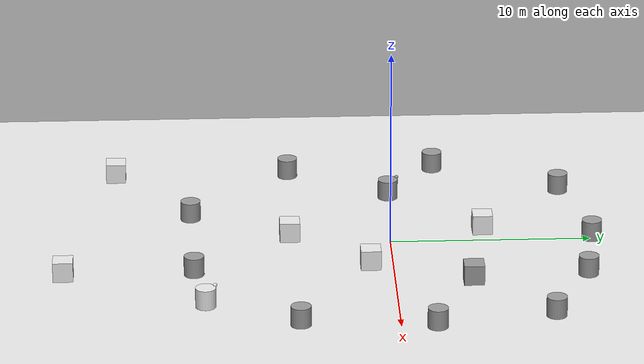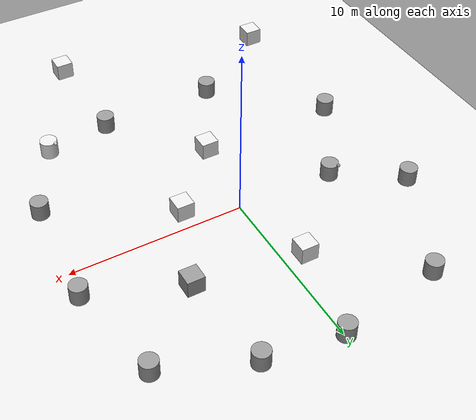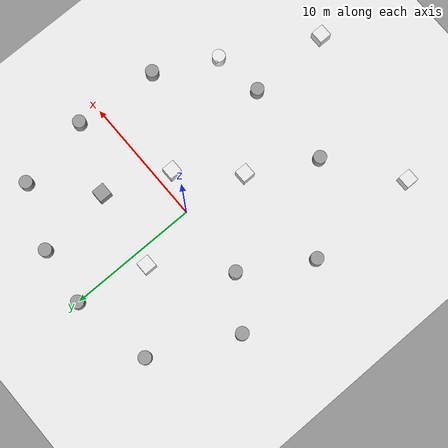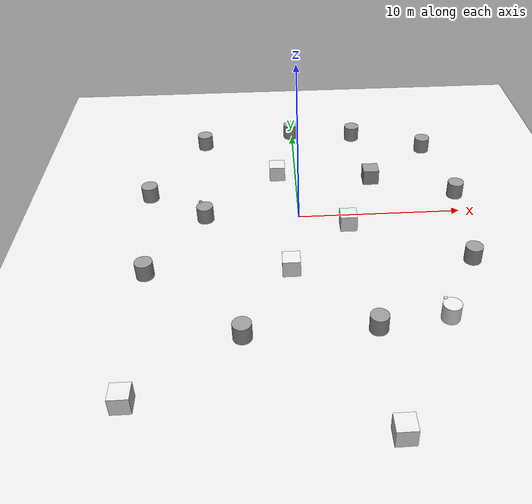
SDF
<sdf version="1.7">
 <world name="default">
  <light name="sun" type="directional">
   <pose>0 0 10 0 -0 0</pose>
   <diffuse>0.8 0.8 0.8 1</diffuse>
   <specular>0.2 0.2 0.2 1</specular>
   <attenuation>
    <range>1000</range>
    <constant>0.9</constant>
    <linear>0.01</linear>
    <quadratic>0.001</quadratic>
   </attenuation>
   <direction>-0.5 0.1 -0.9</direction>
   <spot><inner_angle>0</inner_angle><outer_angle>0</outer_angle><falloff>0</falloff></spot>
  </light>
  <model name="ground_plane">
   <static>1</static>
   <link name="link">
    <collision name="collision">
     <geometry><plane><normal>0 0 1</normal><size>100 100</size></plane></geometry>
     <surface><friction><ode><mu>100</mu><mu2>50</mu2></ode></friction></surface>
    </collision>
    <visual name="visual">
     <cast_shadows>0</cast_shadows>
     <geometry><plane><normal>0 0 1</normal><size>100 100</size></plane></geometry>
     <material>
      <script><uri>file://media/materials/scripts/gazebo.material</uri><name>Gazebo/White</name></script>
     </material>
    </visual>
   </link>
  </model>
  <gravity>0 0 -9.8</gravity>
  <magnetic_field>6e-06 2.3e-05 -4.2e-05</magnetic_field>
  <atmosphere type="adiabatic"/>
  <physics type="ode">
   <max_step_size>0.001</max_step_size>
   <real_time_factor>1</real_time_factor>
   <real_time_update_rate>1000</real_time_update_rate>
  </physics>
  <scene><ambient>0.4 0.4 0.4 1</ambient><background>0.7 0.7 0.7 1</background><shadows>1</shadows></scene>
  <spherical_coordinates>
   <surface_model>EARTH_WGS84</surface_model>
   <latitude_deg>0</latitude_deg>
   <longitude_deg>0</longitude_deg>
   <elevation>0</elevation>
   <heading_deg>0</heading_deg>
  </spherical_coordinates>
  <model name="model2.10">
   <link name="link_12">
    <inertial>
     <mass>1</mass>
     <inertia><ixx>0.145833</ixx><ixy>0</ixy><ixz>0</ixz><iyy>0.145833</iyy><iyz>0</iyz><izz>0.125</izz></inertia>
    </inertial>
    <pose>-3e-06 1e-06 0 0 -0 0</pose>
    <visual name="visual">
     <geometry><cylinder><radius>0.5</radius><length>1</length></cylinder></geometry>
     <material>
      <lighting>1</lighting>
      <script><uri>file://media/materials/scripts/gazebo.material</uri><name>Gazebo/Grey</name></script>
      <shader type="pixel"/>
     </material>
    </visual>
    <collision name="collision">
     <geometry><cylinder><radius>0.5</radius><length>1</length></cylinder></geometry>
     <surface>
      <friction>
       <ode><mu>1</mu><mu2>1</mu2><fdir1>0 0 0</fdir1><slip1>0</slip1><slip2>0</slip2></ode>
       <torsional>
        <coefficient>1</coefficient>
        <patch_radius>0</patch_radius>
        <surface_radius>0</surface_radius>
        <use_patch_radius>1</use_patch_radius>
        <ode><slip>0</slip></ode>
       </torsional>
      </friction>
      <bounce><restitution_coefficient>0</restitution_coefficient><threshold>1e+06</threshold></bounce>
      <contact>
       <collide_without_contact>0</collide_without_contact>
       <collide_without_contact_bitmask>1</collide_without_contact_bitmask>
       <collide_bitmask>1</collide_bitmask>
       <ode>
        <soft_cfm>0</soft_cfm>
        <soft_erp>0.2</soft_erp>
        <kp>1e+13</kp>
        <kd>1</kd>
        <max_vel>0.01</max_vel>
        <min_depth>0</min_depth>
       </ode>
       <bullet>
        <split_impulse>1</split_impulse>
        <split_impulse_penetration_threshold>-0.01</split_impulse_penetration_threshold>
        <soft_cfm>0</soft_cfm>
        <soft_erp>0.2</soft_erp>
        <kp>1e+13</kp>
        <kd>1</kd>
       </bullet>
      </contact>
     </surface>
    </collision>
   </link>
   <static>0</static>
   <pose>-0.069303 10.0831 0.5 0 -0 0</pose>
  </model>
  <model name="model2.1">
   <link name="link_0">
    <inertial>
     <mass>1</mass>
     <inertia><ixx>0.145833</ixx><ixy>0</ixy><ixz>0</ixz><iyy>0.145833</iyy><iyz>0</iyz><izz>0.125</izz></inertia>
    </inertial>
    <visual name="visual">
     <geometry><cylinder><radius>0.5</radius><length>1</length></cylinder></geometry>
     <material>
      <lighting>1</lighting>
      <script><uri>file://media/materials/scripts/gazebo.material</uri><name>Gazebo/Grey</name></script>
      <shader type="pixel"><normal_map>__default__</normal_map></shader>
     </material>
    </visual>
    <collision name="collision">
     <geometry><cylinder><radius>0.5</radius><length>1</length></cylinder></geometry>
     <surface>
      <friction>
       <ode><mu>1</mu><mu2>1</mu2><fdir1>0 0 0</fdir1><slip1>0</slip1><slip2>0</slip2></ode>
       <torsional>
        <coefficient>1</coefficient>
        <patch_radius>0</patch_radius>
        <surface_radius>0</surface_radius>
        <use_patch_radius>1</use_patch_radius>
        <ode><slip>0</slip></ode>
       </torsional>
      </friction>
      <bounce><restitution_coefficient>0</restitution_coefficient><threshold>1e+06</threshold></bounce>
      <contact>
       <collide_without_contact>0</collide_without_contact>
       <collide_without_contact_bitmask>1</collide_without_contact_bitmask>
       <collide_bitmask>1</collide_bitmask>
       <ode>
        <soft_cfm>0</soft_cfm>
        <soft_erp>0.2</soft_erp>
        <kp>1e+13</kp>
        <kd>1</kd>
        <max_vel>0.01</max_vel>
        <min_depth>0</min_depth>
       </ode>
       <bullet>
        <split_impulse>1</split_impulse>
        <split_impulse_penetration_threshold>-0.01</split_impulse_penetration_threshold>
        <soft_cfm>0</soft_cfm>
        <soft_erp>0.2</soft_erp>
        <kp>1e+13</kp>
        <kd>1</kd>
       </bullet>
      </contact>
     </surface>
    </collision>
   </link>
   <static>0</static>
   <pose>-6.15618 8.91818 0.5 0 -0 0</pose>
  </model>
  <model name="model2.2">
   <link name="link_1">
    <inertial>
     <mass>1</mass>
     <inertia><ixx>0.145833</ixx><ixy>0</ixy><ixz>0</ixz><iyy>0.145833</iyy><iyz>0</iyz><izz>0.125</izz></inertia>
    </inertial>
    <pose>0 5e-06 0 0 -0 0</pose>
    <visual name="visual">
     <geometry><cylinder><radius>0.5</radius><length>1</length></cylinder></geometry>
     <material>
      <lighting>1</lighting>
      <script><uri>file://media/materials/scripts/gazebo.material</uri><name>Gazebo/Grey</name></script>
      <shader type="pixel"/>
     </material>
    </visual>
    <collision name="collision">
     <geometry><cylinder><radius>0.5</radius><length>1</length></cylinder></geometry>
     <surface>
      <friction>
       <ode><mu>1</mu><mu2>1</mu2><fdir1>0 0 0</fdir1><slip1>0</slip1><slip2>0</slip2></ode>
       <torsional>
        <coefficient>1</coefficient>
        <patch_radius>0</patch_radius>
        <surface_radius>0</surface_radius>
        <use_patch_radius>1</use_patch_radius>
        <ode><slip>0</slip></ode>
       </torsional>
      </friction>
      <bounce><restitution_coefficient>0</restitution_coefficient><threshold>1e+06</threshold></bounce>
      <contact>
       <collide_without_contact>0</collide_without_contact>
       <collide_without_contact_bitmask>1</collide_without_contact_bitmask>
       <collide_bitmask>1</collide_bitmask>
       <ode>
        <soft_cfm>0</soft_cfm>
        <soft_erp>0.2</soft_erp>
        <kp>1e+13</kp>
        <kd>1</kd>
        <max_vel>0.01</max_vel>
        <min_depth>0</min_depth>
       </ode>
       <bullet>
        <split_impulse>1</split_impulse>
        <split_impulse_penetration_threshold>-0.01</split_impulse_penetration_threshold>
        <soft_cfm>0</soft_cfm>
        <soft_erp>0.2</soft_erp>
        <kp>1e+13</kp>
        <kd>1</kd>
       </bullet>
      </contact>
     </surface>
    </collision>
   </link>
   <static>0</static>
   <pose>-9.29105 2.63659 0.5 0 -0 0</pose>
  </model>
  <model name="model2.4">
   <link name="link_4">
    <inertial>
     <mass>1</mass>
     <inertia><ixx>0.145833</ixx><ixy>0</ixy><ixz>0</ixz><iyy>0.145833</iyy><iyz>0</iyz><izz>0.125</izz></inertia>
    </inertial>
    <pose>-3e-06 0 0 0 -0 0</pose>
    <visual name="visual">
     <geometry><cylinder><radius>0.5</radius><length>1</length></cylinder></geometry>
     <material>
      <lighting>1</lighting>
      <script><uri>file://media/materials/scripts/gazebo.material</uri><name>Gazebo/Grey</name></script>
      <shader type="pixel"/>
     </material>
    </visual>
    <collision name="collision">
     <geometry><cylinder><radius>0.5</radius><length>1</length></cylinder></geometry>
     <surface>
      <friction>
       <ode><mu>1</mu><mu2>1</mu2><fdir1>0 0 0</fdir1><slip1>0</slip1><slip2>0</slip2></ode>
       <torsional>
        <coefficient>1</coefficient>
        <patch_radius>0</patch_radius>
        <surface_radius>0</surface_radius>
        <use_patch_radius>1</use_patch_radius>
        <ode><slip>0</slip></ode>
       </torsional>
      </friction>
      <bounce><restitution_coefficient>0</restitution_coefficient><threshold>1e+06</threshold></bounce>
      <contact>
       <collide_without_contact>0</collide_without_contact>
       <collide_without_contact_bitmask>1</collide_without_contact_bitmask>
       <collide_bitmask>1</collide_bitmask>
       <ode>
        <soft_cfm>0</soft_cfm>
        <soft_erp>0.2</soft_erp>
        <kp>1e+13</kp>
        <kd>1</kd>
        <max_vel>0.01</max_vel>
        <min_depth>0</min_depth>
       </ode>
       <bullet>
        <split_impulse>1</split_impulse>
        <split_impulse_penetration_threshold>-0.01</split_impulse_penetration_threshold>
        <soft_cfm>0</soft_cfm>
        <soft_erp>0.2</soft_erp>
        <kp>1e+13</kp>
        <kd>1</kd>
       </bullet>
      </contact>
     </surface>
    </collision>
   </link>
   <static>0</static>
   <pose>-8.72092 -4.88792 0.5 0 -0 0</pose>
  </model>
  <model name="model2.3">
   <link name="link_11">
    <inertial>
     <mass>1</mass>
     <inertia><ixx>0.145833</ixx><ixy>0</ixy><ixz>0</ixz><iyy>0.145833</iyy><iyz>0</iyz><izz>0.125</izz></inertia>
    </inertial>
    <pose>-3e-06 0 0 0 -0 0</pose>
    <visual name="visual">
     <geometry><cylinder><radius>0.5</radius><length>1</length></cylinder></geometry>
     <material>
      <lighting>1</lighting>
      <script><uri>file://media/materials/scripts/gazebo.material</uri><name>Gazebo/Grey</name></script>
      <shader type="pixel"/>
     </material>
    </visual>
    <collision name="collision">
     <geometry><cylinder><radius>0.5</radius><length>1</length></cylinder></geometry>
     <surface>
      <friction>
       <ode><mu>1</mu><mu2>1</mu2><fdir1>0 0 0</fdir1><slip1>0</slip1><slip2>0</slip2></ode>
       <torsional>
        <coefficient>1</coefficient>
        <patch_radius>0</patch_radius>
        <surface_radius>0</surface_radius>
        <use_patch_radius>1</use_patch_radius>
        <ode><slip>0</slip></ode>
       </torsional>
      </friction>
      <bounce><restitution_coefficient>0</restitution_coefficient><threshold>1e+06</threshold></bounce>
      <contact>
       <collide_without_contact>0</collide_without_contact>
       <collide_without_contact_bitmask>1</collide_without_contact_bitmask>
       <collide_bitmask>1</collide_bitmask>
       <ode>
        <soft_cfm>0</soft_cfm>
        <soft_erp>0.2</soft_erp>
        <kp>1e+13</kp>
        <kd>1</kd>
        <max_vel>0.01</max_vel>
        <min_depth>0</min_depth>
       </ode>
       <bullet>
        <split_impulse>1</split_impulse>
        <split_impulse_penetration_threshold>-0.01</split_impulse_penetration_threshold>
        <soft_cfm>0</soft_cfm>
        <soft_erp>0.2</soft_erp>
        <kp>1e+13</kp>
        <kd>1</kd>
       </bullet>
      </contact>
     </surface>
    </collision>
   </link>
   <static>0</static>
   <pose>-3.30049 -9.94824 0.5 0 -0 0</pose>
  </model>
  <model name="model2.5">
   <link name="link_5">
    <inertial>
     <mass>1</mass>
     <inertia><ixx>0.145833</ixx><ixy>0</ixy><ixz>0</ixz><iyy>0.145833</iyy><iyz>0</iyz><izz>0.125</izz></inertia>
    </inertial>
    <pose>-0 4e-06 0 0 -0 0</pose>
    <visual name="visual">
     <geometry><cylinder><radius>0.5</radius><length>1</length></cylinder></geometry>
     <material>
      <lighting>1</lighting>
      <script><uri>file://media/materials/scripts/gazebo.material</uri><name>Gazebo/Grey</name></script>
      <shader type="pixel"/>
     </material>
    </visual>
    <collision name="collision">
     <geometry><cylinder><radius>0.5</radius><length>1</length></cylinder></geometry>
     <surface>
      <friction>
       <ode><mu>1</mu><mu2>1</mu2><fdir1>0 0 0</fdir1><slip1>0</slip1><slip2>0</slip2></ode>
       <torsional>
        <coefficient>1</coefficient>
        <patch_radius>0</patch_radius>
        <surface_radius>0</surface_radius>
        <use_patch_radius>1</use_patch_radius>
        <ode><slip>0</slip></ode>
       </torsional>
      </friction>
      <bounce><restitution_coefficient>0</restitution_coefficient><threshold>1e+06</threshold></bounce>
      <contact>
       <collide_without_contact>0</collide_without_contact>
       <collide_without_contact_bitmask>1</collide_without_contact_bitmask>
       <collide_bitmask>1</collide_bitmask>
       <ode>
        <soft_cfm>0</soft_cfm>
        <soft_erp>0.2</soft_erp>
        <kp>1e+13</kp>
        <kd>1</kd>
        <max_vel>0.01</max_vel>
        <min_depth>0</min_depth>
       </ode>
       <bullet>
        <split_impulse>1</split_impulse>
        <split_impulse_penetration_threshold>-0.01</split_impulse_penetration_threshold>
        <soft_cfm>0</soft_cfm>
        <soft_erp>0.2</soft_erp>
        <kp>1e+13</kp>
        <kd>1</kd>
       </bullet>
      </contact>
     </surface>
    </collision>
   </link>
   <static>0</static>
   <pose>3.54549 -9.84256 0.5 0 -0 0</pose>
  </model>
  <model name="model2.6">
   <link name="link_6">
    <inertial>
     <mass>1</mass>
     <inertia><ixx>0.145833</ixx><ixy>0</ixy><ixz>0</ixz><iyy>0.145833</iyy><iyz>0</iyz><izz>0.125</izz></inertia>
    </inertial>
    <pose>-4e-06 4e-06 0 0 -0 0</pose>
    <visual name="visual">
     <geometry><cylinder><radius>0.5</radius><length>1</length></cylinder></geometry>
     <material>
      <lighting>1</lighting>
      <script><uri>file://media/materials/scripts/gazebo.material</uri><name>Gazebo/Grey</name></script>
      <shader type="pixel"/>
     </material>
    </visual>
    <collision name="collision">
     <geometry><cylinder><radius>0.5</radius><length>1</length></cylinder></geometry>
     <surface>
      <friction>
       <ode><mu>1</mu><mu2>1</mu2><fdir1>0 0 0</fdir1><slip1>0</slip1><slip2>0</slip2></ode>
       <torsional>
        <coefficient>1</coefficient>
        <patch_radius>0</patch_radius>
        <surface_radius>0</surface_radius>
        <use_patch_radius>1</use_patch_radius>
        <ode><slip>0</slip></ode>
       </torsional>
      </friction>
      <bounce><restitution_coefficient>0</restitution_coefficient><threshold>1e+06</threshold></bounce>
      <contact>
       <collide_without_contact>0</collide_without_contact>
       <collide_without_contact_bitmask>1</collide_without_contact_bitmask>
       <collide_bitmask>1</collide_bitmask>
       <ode>
        <soft_cfm>0</soft_cfm>
        <soft_erp>0.2</soft_erp>
        <kp>1e+13</kp>
        <kd>1</kd>
        <max_vel>0.01</max_vel>
        <min_depth>0</min_depth>
       </ode>
       <bullet>
        <split_impulse>1</split_impulse>
        <split_impulse_penetration_threshold>-0.01</split_impulse_penetration_threshold>
        <soft_cfm>0</soft_cfm>
        <soft_erp>0.2</soft_erp>
        <kp>1e+13</kp>
        <kd>1</kd>
       </bullet>
      </contact>
     </surface>
    </collision>
   </link>
   <static>0</static>
   <pose>9.63794 -4.80031 0.5 0 -0 0</pose>
  </model>
  <model name="model2.7">
   <link name="link_7">
    <inertial>
     <mass>1</mass>
     <inertia><ixx>0.145833</ixx><ixy>0</ixy><ixz>0</ixz><iyy>0.145833</iyy><iyz>0</iyz><izz>0.125</izz></inertia>
    </inertial>
    <pose>4.2e-05 4e-06 0 0 -0 0</pose>
    <visual name="visual">
     <geometry><cylinder><radius>0.5</radius><length>1</length></cylinder></geometry>
     <material>
      <lighting>1</lighting>
      <script><uri>file://media/materials/scripts/gazebo.material</uri><name>Gazebo/Grey</name></script>
      <shader type="pixel"/>
     </material>
    </visual>
    <collision name="collision">
     <geometry><cylinder><radius>0.5</radius><length>1</length></cylinder></geometry>
     <surface>
      <friction>
       <ode><mu>1</mu><mu2>1</mu2><fdir1>0 0 0</fdir1><slip1>0</slip1><slip2>0</slip2></ode>
       <torsional>
        <coefficient>1</coefficient>
        <patch_radius>0</patch_radius>
        <surface_radius>0</surface_radius>
        <use_patch_radius>1</use_patch_radius>
        <ode><slip>0</slip></ode>
       </torsional>
      </friction>
      <bounce><restitution_coefficient>0</restitution_coefficient><threshold>1e+06</threshold></bounce>
      <contact>
       <collide_without_contact>0</collide_without_contact>
       <collide_without_contact_bitmask>1</collide_without_contact_bitmask>
       <collide_bitmask>1</collide_bitmask>
       <ode>
        <soft_cfm>0</soft_cfm>
        <soft_erp>0.2</soft_erp>
        <kp>1e+13</kp>
        <kd>1</kd>
        <max_vel>0.01</max_vel>
        <min_depth>0</min_depth>
       </ode>
       <bullet>
        <split_impulse>1</split_impulse>
        <split_impulse_penetration_threshold>-0.01</split_impulse_penetration_threshold>
        <soft_cfm>0</soft_cfm>
        <soft_erp>0.2</soft_erp>
        <kp>1e+13</kp>
        <kd>1</kd>
       </bullet>
      </contact>
     </surface>
    </collision>
   </link>
   <static>0</static>
   <pose>10.1207 1.72648 0.5 0 -0 0</pose>
  </model>
  <model name="model2.8">
   <link name="link_8">
    <inertial>
     <mass>1</mass>
     <inertia><ixx>0.145833</ixx><ixy>0</ixy><ixz>0</ixz><iyy>0.145833</iyy><iyz>0</iyz><izz>0.125</izz></inertia>
    </inertial>
    <pose>0 4e-06 0 0 -0 0</pose>
    <visual name="visual">
     <geometry><cylinder><radius>0.5</radius><length>1</length></cylinder></geometry>
     <material>
      <lighting>1</lighting>
      <script><uri>file://media/materials/scripts/gazebo.material</uri><name>Gazebo/Grey</name></script>
      <shader type="pixel"/>
     </material>
    </visual>
    <collision name="collision">
     <geometry><cylinder><radius>0.5</radius><length>1</length></cylinder></geometry>
     <surface>
      <friction>
       <ode><mu>1</mu><mu2>1</mu2><fdir1>0 0 0</fdir1><slip1>0</slip1><slip2>0</slip2></ode>
       <torsional>
        <coefficient>1</coefficient>
        <patch_radius>0</patch_radius>
        <surface_radius>0</surface_radius>
        <use_patch_radius>1</use_patch_radius>
        <ode><slip>0</slip></ode>
       </torsional>
      </friction>
      <bounce><restitution_coefficient>0</restitution_coefficient><threshold>1e+06</threshold></bounce>
      <contact>
       <collide_without_contact>0</collide_without_contact>
       <collide_without_contact_bitmask>1</collide_without_contact_bitmask>
       <collide_bitmask>1</collide_bitmask>
       <ode>
        <soft_cfm>0</soft_cfm>
        <soft_erp>0.2</soft_erp>
        <kp>1e+13</kp>
        <kd>1</kd>
        <max_vel>0.01</max_vel>
        <min_depth>0</min_depth>
       </ode>
       <bullet>
        <split_impulse>1</split_impulse>
        <split_impulse_penetration_threshold>-0.01</split_impulse_penetration_threshold>
        <soft_cfm>0</soft_cfm>
        <soft_erp>0.2</soft_erp>
        <kp>1e+13</kp>
        <kd>1</kd>
       </bullet>
      </contact>
     </surface>
    </collision>
   </link>
   <static>0</static>
   <pose>9.07668 7.50461 0.5 0 -0 0</pose>
  </model>
  <model name="model2.9">
   <link name="link_9">
    <inertial>
     <mass>1</mass>
     <inertia><ixx>0.145833</ixx><ixy>0</ixy><ixz>0</ixz><iyy>0.145833</iyy><iyz>0</iyz><izz>0.125</izz></inertia>
    </inertial>
    <pose>3e-06 1e-06 0 0 -0 0</pose>
    <visual name="visual">
     <geometry><cylinder><radius>0.5</radius><length>1</length></cylinder></geometry>
     <material>
      <lighting>1</lighting>
      <script><uri>file://media/materials/scripts/gazebo.material</uri><name>Gazebo/Grey</name></script>
      <shader type="pixel"/>
     </material>
    </visual>
    <collision name="collision">
     <geometry><cylinder><radius>0.5</radius><length>1</length></cylinder></geometry>
     <surface>
      <friction>
       <ode><mu>1</mu><mu2>1</mu2><fdir1>0 0 0</fdir1><slip1>0</slip1><slip2>0</slip2></ode>
       <torsional>
        <coefficient>1</coefficient>
        <patch_radius>0</patch_radius>
        <surface_radius>0</surface_radius>
        <use_patch_radius>1</use_patch_radius>
        <ode><slip>0</slip></ode>
       </torsional>
      </friction>
      <bounce><restitution_coefficient>0</restitution_coefficient><threshold>1e+06</threshold></bounce>
      <contact>
       <collide_without_contact>0</collide_without_contact>
       <collide_without_contact_bitmask>1</collide_without_contact_bitmask>
       <collide_bitmask>1</collide_bitmask>
       <ode>
        <soft_cfm>0</soft_cfm>
        <soft_erp>0.2</soft_erp>
        <kp>1e+13</kp>
        <kd>1</kd>
        <max_vel>0.01</max_vel>
        <min_depth>0</min_depth>
       </ode>
       <bullet>
        <split_impulse>1</split_impulse>
        <split_impulse_penetration_threshold>-0.01</split_impulse_penetration_threshold>
        <soft_cfm>0</soft_cfm>
        <soft_erp>0.2</soft_erp>
        <kp>1e+13</kp>
        <kd>1</kd>
       </bullet>
      </contact>
     </surface>
    </collision>
   </link>
   <static>0</static>
   <pose>4.3121 9.50766 0.5 0 -0 0</pose>
  </model>
  <model name="model5.1">
   <link name="link_1">
    <inertial>
     <mass>1</mass>
     <inertia><ixx>0.145833</ixx><ixy>0</ixy><ixz>0</ixz><iyy>0.145833</iyy><iyz>0</iyz><izz>0.125</izz></inertia>
    </inertial>
    <pose>0.135672 -0.23052 0 0 -0 0</pose>
    <visual name="visual">
     <geometry><cylinder><radius>0.5</radius><length>1</length></cylinder></geometry>
     <material>
      <lighting>1</lighting>
      <script><uri>file://media/materials/scripts/gazebo.material</uri><name>Gazebo/Grey</name></script>
      <shader type="pixel"/>
      <emissive>0 0 0 1</emissive>
     </material>
    </visual>
    <collision name="collision">
     <geometry><cylinder><radius>0.5</radius><length>1</length></cylinder></geometry>
     <surface>
      <friction>
       <ode><mu>1</mu><mu2>1</mu2><fdir1>0 0 0</fdir1><slip1>0</slip1><slip2>0</slip2></ode>
       <torsional>
        <coefficient>1</coefficient>
        <patch_radius>0</patch_radius>
        <surface_radius>0</surface_radius>
        <use_patch_radius>1</use_patch_radius>
        <ode><slip>0</slip></ode>
       </torsional>
      </friction>
      <bounce><restitution_coefficient>0</restitution_coefficient><threshold>1e+06</threshold></bounce>
      <contact>
       <collide_without_contact>0</collide_without_contact>
       <collide_without_contact_bitmask>1</collide_without_contact_bitmask>
       <collide_bitmask>1</collide_bitmask>
       <ode>
        <soft_cfm>0</soft_cfm>
        <soft_erp>0.2</soft_erp>
        <kp>1e+13</kp>
        <kd>1</kd>
        <max_vel>0.01</max_vel>
        <min_depth>0</min_depth>
       </ode>
       <bullet>
        <split_impulse>1</split_impulse>
        <split_impulse_penetration_threshold>-0.01</split_impulse_penetration_threshold>
        <soft_cfm>0</soft_cfm>
        <soft_erp>0.2</soft_erp>
        <kp>1e+13</kp>
        <kd>1</kd>
       </bullet>
      </contact>
     </surface>
    </collision>
   </link>
   <link name="link_2">
    <inertial>
     <mass>1</mass>
     <inertia><ixx>0.1</ixx><ixy>0</ixy><ixz>0</ixz><iyy>0.1</iyy><iyz>0</iyz><izz>0.1</izz></inertia>
    </inertial>
    <pose>-0.13567 0.230521 0.5 0 -0 0</pose>
    <visual name="visual">
     <geometry><sphere><radius>0.1</radius></sphere></geometry>
     <material>
      <lighting>1</lighting>
      <script><uri>file://media/materials/scripts/gazebo.material</uri><name>Gazebo/Grey</name></script>
      <shader type="pixel"><normal_map>__default__</normal_map></shader>
      <ambient>0.3 0.3 0.3 1</ambient>
      <diffuse>0.7 0.7 0.7 1</diffuse>
      <specular>0.01 0.01 0.01 1</specular>
      <emissive>0 0 0 1</emissive>
     </material>
    </visual>
    <collision name="collision">
     <geometry><sphere><radius>0.1</radius></sphere></geometry>
     <surface>
      <friction>
       <ode><mu>1</mu><mu2>1</mu2><fdir1>0 0 0</fdir1><slip1>0</slip1><slip2>0</slip2></ode>
       <torsional>
        <coefficient>1</coefficient>
        <patch_radius>0</patch_radius>
        <surface_radius>0</surface_radius>
        <use_patch_radius>1</use_patch_radius>
        <ode><slip>0</slip></ode>
       </torsional>
      </friction>
      <bounce><restitution_coefficient>0</restitution_coefficient><threshold>1e+06</threshold></bounce>
      <contact>
       <collide_without_contact>0</collide_without_contact>
       <collide_without_contact_bitmask>1</collide_without_contact_bitmask>
       <collide_bitmask>1</collide_bitmask>
       <ode>
        <soft_cfm>0</soft_cfm>
        <soft_erp>0.2</soft_erp>
        <kp>1e+13</kp>
        <kd>1</kd>
        <max_vel>0.01</max_vel>
        <min_depth>0</min_depth>
       </ode>
       <bullet>
        <split_impulse>1</split_impulse>
        <split_impulse_penetration_threshold>-0.01</split_impulse_penetration_threshold>
        <soft_cfm>0</soft_cfm>
        <soft_erp>0.2</soft_erp>
        <kp>1e+13</kp>
        <kd>1</kd>
       </bullet>
      </contact>
     </surface>
    </collision>
   </link>
   <joint name="link_1_JOINT_0" type="revolute">
    <parent>link_1</parent>
    <child>link_2</child>
    <pose>0 0 0 0 0 -0.03</pose>
    <axis>
     <xyz>0 0 2</xyz>
     <limit>
      <lower>-1.79769e+308</lower>
      <upper>1.79769e+308</upper>
      <effort>-1</effort>
      <velocity>-1</velocity>
     </limit>
     <dynamics>
      <spring_reference>0</spring_reference>
      <spring_stiffness>0</spring_stiffness>
      <damping>0</damping>
     </dynamics>
    </axis>
    <physics>
     <ode><limit><cfm>0</cfm><erp>0.2</erp></limit><suspension><cfm>0</cfm><erp>0.2</erp></suspension></ode>
    </physics>
   </joint>
   <static>0</static>
   <pose>-5.82027 0.390792 0.499993 0 -0 -0.001529</pose>
  </model>
  <model name="Untitled1.1">
   <link name="link_0">
    <inertial>
     <mass>1</mass>
     <inertia>
      <ixx>0.166667</ixx>
      <ixy>0</ixy>
      <ixz>0</ixz>
      <iyy>0.166667</iyy>
      <iyz>0</iyz>
      <izz>0.166667</izz>
     </inertia>
    </inertial>
    <pose>1e-06 -1e-06 0 0 -0 0</pose>
    <visual name="visual">
     <geometry><box><size>1 1 1</size></box></geometry>
     <material>
      <lighting>1</lighting>
      <script><uri>file://media/materials/scripts/gazebo.material</uri><name>Gazebo/White</name></script>
      <shader type="pixel"/>
     </material>
    </visual>
    <collision name="collision">
     <geometry><box><size>1 1 1</size></box></geometry>
     <surface>
      <friction>
       <ode><mu>1</mu><mu2>1</mu2><fdir1>0 0 0</fdir1><slip1>0</slip1><slip2>0</slip2></ode>
       <torsional>
        <coefficient>1</coefficient>
        <patch_radius>0</patch_radius>
        <surface_radius>0</surface_radius>
        <use_patch_radius>1</use_patch_radius>
        <ode><slip>0</slip></ode>
       </torsional>
      </friction>
      <bounce><restitution_coefficient>0</restitution_coefficient><threshold>1e+06</threshold></bounce>
      <contact>
       <collide_without_contact>0</collide_without_contact>
       <collide_without_contact_bitmask>1</collide_without_contact_bitmask>
       <collide_bitmask>1</collide_bitmask>
       <ode>
        <soft_cfm>0</soft_cfm>
        <soft_erp>0.2</soft_erp>
        <kp>1e+13</kp>
        <kd>1</kd>
        <max_vel>0.01</max_vel>
        <min_depth>0</min_depth>
       </ode>
       <bullet>
        <split_impulse>1</split_impulse>
        <split_impulse_penetration_threshold>-0.01</split_impulse_penetration_threshold>
        <soft_cfm>0</soft_cfm>
        <soft_erp>0.2</soft_erp>
        <kp>1e+13</kp>
        <kd>1</kd>
       </bullet>
      </contact>
     </surface>
    </collision>
   </link>
   <static>0</static>
   <pose>-0.657097 -5.02189 0.5 0 -0 0</pose>
  </model>
  <model name="Untitled1.1_0">
   <link name="link_0">
    <inertial>
     <mass>1</mass>
     <inertia>
      <ixx>0.166667</ixx>
      <ixy>0</ixy>
      <ixz>0</ixz>
      <iyy>0.166667</iyy>
      <iyz>0</iyz>
      <izz>0.166667</izz>
     </inertia>
    </inertial>
    <pose>1e-06 -1e-06 0 0 -0 0</pose>
    <visual name="visual">
     <geometry><box><size>1 1 1</size></box></geometry>
     <material>
      <lighting>1</lighting>
      <script><uri>file://media/materials/scripts/gazebo.material</uri><name>Gazebo/Grey</name></script>
      <shader type="pixel"/>
     </material>
    </visual>
    <collision name="collision">
     <geometry><box><size>1 1 1</size></box></geometry>
     <surface>
      <friction>
       <ode><mu>1</mu><mu2>1</mu2><fdir1>0 0 0</fdir1><slip1>0</slip1><slip2>0</slip2></ode>
       <torsional>
        <coefficient>1</coefficient>
        <patch_radius>0</patch_radius>
        <surface_radius>0</surface_radius>
        <use_patch_radius>1</use_patch_radius>
        <ode><slip>0</slip></ode>
       </torsional>
      </friction>
      <bounce><restitution_coefficient>0</restitution_coefficient><threshold>1e+06</threshold></bounce>
      <contact>
       <collide_without_contact>0</collide_without_contact>
       <collide_without_contact_bitmask>1</collide_without_contact_bitmask>
       <collide_bitmask>1</collide_bitmask>
       <ode>
        <soft_cfm>0</soft_cfm>
        <soft_erp>0.2</soft_erp>
        <kp>1e+13</kp>
        <kd>1</kd>
        <max_vel>0.01</max_vel>
        <min_depth>0</min_depth>
       </ode>
       <bullet>
        <split_impulse>1</split_impulse>
        <split_impulse_penetration_threshold>-0.01</split_impulse_penetration_threshold>
        <soft_cfm>0</soft_cfm>
        <soft_erp>0.2</soft_erp>
        <kp>1e+13</kp>
        <kd>1</kd>
       </bullet>
      </contact>
     </surface>
    </collision>
   </link>
   <static>0</static>
   <pose>4.92479 3.81369 0.5 0 -0 0</pose>
  </model>
  <model name="Untitled1.1_1">
   <link name="link_0">
    <inertial>
     <mass>1</mass>
     <inertia>
      <ixx>0.166667</ixx>
      <ixy>0</ixy>
      <ixz>0</ixz>
      <iyy>0.166667</iyy>
      <iyz>0</iyz>
      <izz>0.166667</izz>
     </inertia>
    </inertial>
    <pose>1e-06 -1e-06 0 0 -0 0</pose>
    <visual name="visual">
     <geometry><box><size>1 1 1</size></box></geometry>
     <material>
      <lighting>1</lighting>
      <script><uri>file://media/materials/scripts/gazebo.material</uri><name>Gazebo/White</name></script>
      <shader type="pixel"/>
     </material>
    </visual>
    <collision name="collision">
     <geometry><box><size>1 1 1</size></box></geometry>
     <surface>
      <friction>
       <ode><mu>1</mu><mu2>1</mu2><fdir1>0 0 0</fdir1><slip1>0</slip1><slip2>0</slip2></ode>
       <torsional>
        <coefficient>1</coefficient>
        <patch_radius>0</patch_radius>
        <surface_radius>0</surface_radius>
        <use_patch_radius>1</use_patch_radius>
        <ode><slip>0</slip></ode>
       </torsional>
      </friction>
      <bounce><restitution_coefficient>0</restitution_coefficient><threshold>1e+06</threshold></bounce>
      <contact>
       <collide_without_contact>0</collide_without_contact>
       <collide_without_contact_bitmask>1</collide_without_contact_bitmask>
       <collide_bitmask>1</collide_bitmask>
       <ode>
        <soft_cfm>0</soft_cfm>
        <soft_erp>0.2</soft_erp>
        <kp>1e+13</kp>
        <kd>1</kd>
        <max_vel>0.01</max_vel>
        <min_depth>0</min_depth>
       </ode>
       <bullet>
        <split_impulse>1</split_impulse>
        <split_impulse_penetration_threshold>-0.01</split_impulse_penetration_threshold>
        <soft_cfm>0</soft_cfm>
        <soft_erp>0.2</soft_erp>
        <kp>1e+13</kp>
        <kd>1</kd>
       </bullet>
      </contact>
     </surface>
    </collision>
   </link>
   <static>0</static>
   <pose>2.93444 -1.1378 0.5 0 -0 0</pose>
  </model>
  <model name="Untitled1.1_2">
   <link name="link_0">
    <inertial>
     <mass>1</mass>
     <inertia>
      <ixx>0.166667</ixx>
      <ixy>0</ixy>
      <ixz>0</ixz>
      <iyy>0.166667</iyy>
      <iyz>0</iyz>
      <izz>0.166667</izz>
     </inertia>
    </inertial>
    <pose>1e-06 -1e-06 0 0 -0 0</pose>
    <visual name="visual">
     <geometry><box><size>1 1 1</size></box></geometry>
     <material>
      <lighting>1</lighting>
      <script><uri>file://media/materials/scripts/gazebo.material</uri><name>Gazebo/White</name></script>
      <shader type="pixel"/>
     </material>
    </visual>
    <collision name="collision">
     <geometry><box><size>1 1 1</size></box></geometry>
     <surface>
      <friction>
       <ode><mu>1</mu><mu2>1</mu2><fdir1>0 0 0</fdir1><slip1>0</slip1><slip2>0</slip2></ode>
       <torsional>
        <coefficient>1</coefficient>
        <patch_radius>0</patch_radius>
        <surface_radius>0</surface_radius>
        <use_patch_radius>1</use_patch_radius>
        <ode><slip>0</slip></ode>
       </torsional>
      </friction>
      <bounce><restitution_coefficient>0</restitution_coefficient><threshold>1e+06</threshold></bounce>
      <contact>
       <collide_without_contact>0</collide_without_contact>
       <collide_without_contact_bitmask>1</collide_without_contact_bitmask>
       <collide_bitmask>1</collide_bitmask>
       <ode>
        <soft_cfm>0</soft_cfm>
        <soft_erp>0.2</soft_erp>
        <kp>1e+13</kp>
        <kd>1</kd>
        <max_vel>0.01</max_vel>
        <min_depth>0</min_depth>
       </ode>
       <bullet>
        <split_impulse>1</split_impulse>
        <split_impulse_penetration_threshold>-0.01</split_impulse_penetration_threshold>
        <soft_cfm>0</soft_cfm>
        <soft_erp>0.2</soft_erp>
        <kp>1e+13</kp>
        <kd>1</kd>
       </bullet>
      </contact>
     </surface>
    </collision>
   </link>
   <static>0</static>
   <pose>-1.19172 4.66669 0.5 0 -0 0</pose>
  </model>
  <model name="model5.1_0">
   <link name="link_1">
    <inertial>
     <mass>1</mass>
     <inertia><ixx>0.145833</ixx><ixy>0</ixy><ixz>0</ixz><iyy>0.145833</iyy><iyz>0</iyz><izz>0.125</izz></inertia>
    </inertial>
    <pose>0.135672 -0.23052 0 0 -0 0</pose>
    <visual name="visual">
     <geometry><cylinder><radius>0.5</radius><length>1</length></cylinder></geometry>
     <material>
      <lighting>1</lighting>
      <script><uri>file://media/materials/scripts/gazebo.material</uri><name>Gazebo/White</name></script>
      <shader type="pixel"/>
      <emissive>0 0 0 1</emissive>
     </material>
    </visual>
    <collision name="collision">
     <geometry><cylinder><radius>0.5</radius><length>1</length></cylinder></geometry>
     <surface>
      <friction>
       <ode><mu>1</mu><mu2>1</mu2><fdir1>0 0 0</fdir1><slip1>0</slip1><slip2>0</slip2></ode>
       <torsional>
        <coefficient>1</coefficient>
        <patch_radius>0</patch_radius>
        <surface_radius>0</surface_radius>
        <use_patch_radius>1</use_patch_radius>
        <ode><slip>0</slip></ode>
       </torsional>
      </friction>
      <bounce><restitution_coefficient>0</restitution_coefficient><threshold>1e+06</threshold></bounce>
      <contact>
       <collide_without_contact>0</collide_without_contact>
       <collide_without_contact_bitmask>1</collide_without_contact_bitmask>
       <collide_bitmask>1</collide_bitmask>
       <ode>
        <soft_cfm>0</soft_cfm>
        <soft_erp>0.2</soft_erp>
        <kp>1e+13</kp>
        <kd>1</kd>
        <max_vel>0.01</max_vel>
        <min_depth>0</min_depth>
       </ode>
       <bullet>
        <split_impulse>1</split_impulse>
        <split_impulse_penetration_threshold>-0.01</split_impulse_penetration_threshold>
        <soft_cfm>0</soft_cfm>
        <soft_erp>0.2</soft_erp>
        <kp>1e+13</kp>
        <kd>1</kd>
       </bullet>
      </contact>
     </surface>
    </collision>
   </link>
   <link name="link_2">
    <inertial>
     <mass>1</mass>
     <inertia><ixx>0.1</ixx><ixy>0</ixy><ixz>0</ixz><iyy>0.1</iyy><iyz>0</iyz><izz>0.1</izz></inertia>
    </inertial>
    <pose>-0.13567 0.230521 0.5 0 -0 0</pose>
    <visual name="visual">
     <geometry><sphere><radius>0.1</radius></sphere></geometry>
     <material>
      <lighting>1</lighting>
      <script><uri>file://media/materials/scripts/gazebo.material</uri><name>Gazebo/White</name></script>
      <shader type="pixel"><normal_map>__default__</normal_map></shader>
      <ambient>0.3 0.3 0.3 1</ambient>
      <diffuse>0.7 0.7 0.7 1</diffuse>
      <specular>0.01 0.01 0.01 1</specular>
      <emissive>0 0 0 1</emissive>
     </material>
    </visual>
    <collision name="collision">
     <geometry><sphere><radius>0.1</radius></sphere></geometry>
     <surface>
      <friction>
       <ode><mu>1</mu><mu2>1</mu2><fdir1>0 0 0</fdir1><slip1>0</slip1><slip2>0</slip2></ode>
       <torsional>
        <coefficient>1</coefficient>
        <patch_radius>0</patch_radius>
        <surface_radius>0</surface_radius>
        <use_patch_radius>1</use_patch_radius>
        <ode><slip>0</slip></ode>
       </torsional>
      </friction>
      <bounce><restitution_coefficient>0</restitution_coefficient><threshold>1e+06</threshold></bounce>
      <contact>
       <collide_without_contact>0</collide_without_contact>
       <collide_without_contact_bitmask>1</collide_without_contact_bitmask>
       <collide_bitmask>1</collide_bitmask>
       <ode>
        <soft_cfm>0</soft_cfm>
        <soft_erp>0.2</soft_erp>
        <kp>1e+13</kp>
        <kd>1</kd>
        <max_vel>0.01</max_vel>
        <min_depth>0</min_depth>
       </ode>
       <bullet>
        <split_impulse>1</split_impulse>
        <split_impulse_penetration_threshold>-0.01</split_impulse_penetration_threshold>
        <soft_cfm>0</soft_cfm>
        <soft_erp>0.2</soft_erp>
        <kp>1e+13</kp>
        <kd>1</kd>
       </bullet>
      </contact>
     </surface>
    </collision>
   </link>
   <joint name="link_1_JOINT_0" type="revolute">
    <parent>link_1</parent>
    <child>link_2</child>
    <pose>0 0 0 0 0 -0.03</pose>
    <axis>
     <xyz>0 0 2</xyz>
     <limit>
      <lower>-1.79769e+308</lower>
      <upper>1.79769e+308</upper>
      <effort>-1</effort>
      <velocity>-1</velocity>
     </limit>
     <dynamics>
      <spring_reference>0</spring_reference>
      <spring_stiffness>0</spring_stiffness>
      <damping>0</damping>
     </dynamics>
    </axis>
    <physics>
     <ode><limit><cfm>0</cfm><erp>0.2</erp></limit><suspension><cfm>0</cfm><erp>0.2</erp></suspension></ode>
    </physics>
   </joint>
   <static>0</static>
   <pose>7.19573 -9.09054 0.499991 0 -0 -0.001184</pose>
  </model>
  <model name="Untitled1.1_3">
   <link name="link_0">
    <inertial>
     <mass>1</mass>
     <inertia>
      <ixx>0.166667</ixx>
      <ixy>0</ixy>
      <ixz>0</ixz>
      <iyy>0.166667</iyy>
      <iyz>0</iyz>
      <izz>0.166667</izz>
     </inertia>
    </inertial>
    <pose>1e-06 -1e-06 0 0 -0 0</pose>
    <visual name="visual">
     <geometry><box><size>1 1 1</size></box></geometry>
     <material>
      <lighting>1</lighting>
      <script><uri>file://media/materials/scripts/gazebo.material</uri><name>Gazebo/White</name></script>
      <shader type="pixel"/>
     </material>
    </visual>
    <collision name="collision">
     <geometry><box><size>1 1 1</size></box></geometry>
     <surface>
      <friction>
       <ode><mu>1</mu><mu2>1</mu2><fdir1>0 0 0</fdir1><slip1>0</slip1><slip2>0</slip2></ode>
       <torsional>
        <coefficient>1</coefficient>
        <patch_radius>0</patch_radius>
        <surface_radius>0</surface_radius>
        <use_patch_radius>1</use_patch_radius>
        <ode><slip>0</slip></ode>
       </torsional>
      </friction>
      <bounce><restitution_coefficient>0</restitution_coefficient><threshold>1e+06</threshold></bounce>
      <contact>
       <collide_without_contact>0</collide_without_contact>
       <collide_without_contact_bitmask>1</collide_without_contact_bitmask>
       <collide_bitmask>1</collide_bitmask>
       <ode>
        <soft_cfm>0</soft_cfm>
        <soft_erp>0.2</soft_erp>
        <kp>1e+13</kp>
        <kd>1</kd>
        <max_vel>0.01</max_vel>
        <min_depth>0</min_depth>
       </ode>
       <bullet>
        <split_impulse>1</split_impulse>
        <split_impulse_penetration_threshold>-0.01</split_impulse_penetration_threshold>
        <soft_cfm>0</soft_cfm>
        <soft_erp>0.2</soft_erp>
        <kp>1e+13</kp>
        <kd>1</kd>
       </bullet>
      </contact>
     </surface>
    </collision>
   </link>
   <static>0</static>
   <pose>-8.63062 -13.7499 0.5 0 -0 0</pose>
  </model>
  <model name="Untitled1.1_4">
   <link name="link_0">
    <inertial>
     <mass>1</mass>
     <inertia>
      <ixx>0.166667</ixx>
      <ixy>0</ixy>
      <ixz>0</ixz>
      <iyy>0.166667</iyy>
      <iyz>0</iyz>
      <izz>0.166667</izz>
     </inertia>
    </inertial>
    <pose>1e-06 -1e-06 0 0 -0 0</pose>
    <visual name="visual">
     <geometry><box><size>1 1 1</size></box></geometry>
     <material>
      <lighting>1</lighting>
      <script><uri>file://media/materials/scripts/gazebo.material</uri><name>Gazebo/White</name></script>
      <shader type="pixel"/>
     </material>
    </visual>
    <collision name="collision">
     <geometry><box><size>1 1 1</size></box></geometry>
     <surface>
      <friction>
       <ode><mu>1</mu><mu2>1</mu2><fdir1>0 0 0</fdir1><slip1>0</slip1><slip2>0</slip2></ode>
       <torsional>
        <coefficient>1</coefficient>
        <patch_radius>0</patch_radius>
        <surface_radius>0</surface_radius>
        <use_patch_radius>1</use_patch_radius>
        <ode><slip>0</slip></ode>
       </torsional>
      </friction>
      <bounce><restitution_coefficient>0</restitution_coefficient><threshold>1e+06</threshold></bounce>
      <contact>
       <collide_without_contact>0</collide_without_contact>
       <collide_without_contact_bitmask>1</collide_without_contact_bitmask>
       <collide_bitmask>1</collide_bitmask>
       <ode>
        <soft_cfm>0</soft_cfm>
        <soft_erp>0.2</soft_erp>
        <kp>1e+13</kp>
        <kd>1</kd>
        <max_vel>0.01</max_vel>
        <min_depth>0</min_depth>
       </ode>
       <bullet>
        <split_impulse>1</split_impulse>
        <split_impulse_penetration_threshold>-0.01</split_impulse_penetration_threshold>
        <soft_cfm>0</soft_cfm>
        <soft_erp>0.2</soft_erp>
        <kp>1e+13</kp>
        <kd>1</kd>
       </bullet>
      </contact>
     </surface>
    </collision>
   </link>
   <static>0</static>
   <pose>3.6994 -16.262 0.5 0 -0 0</pose>
  </model>
 </world>
</sdf>
